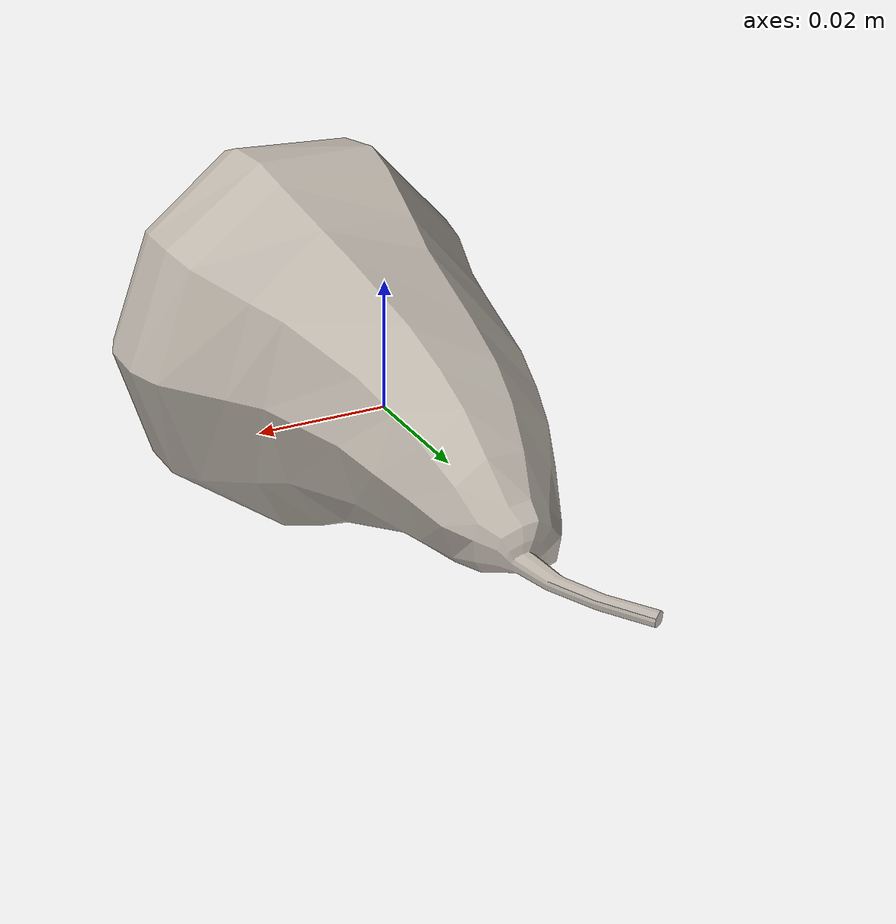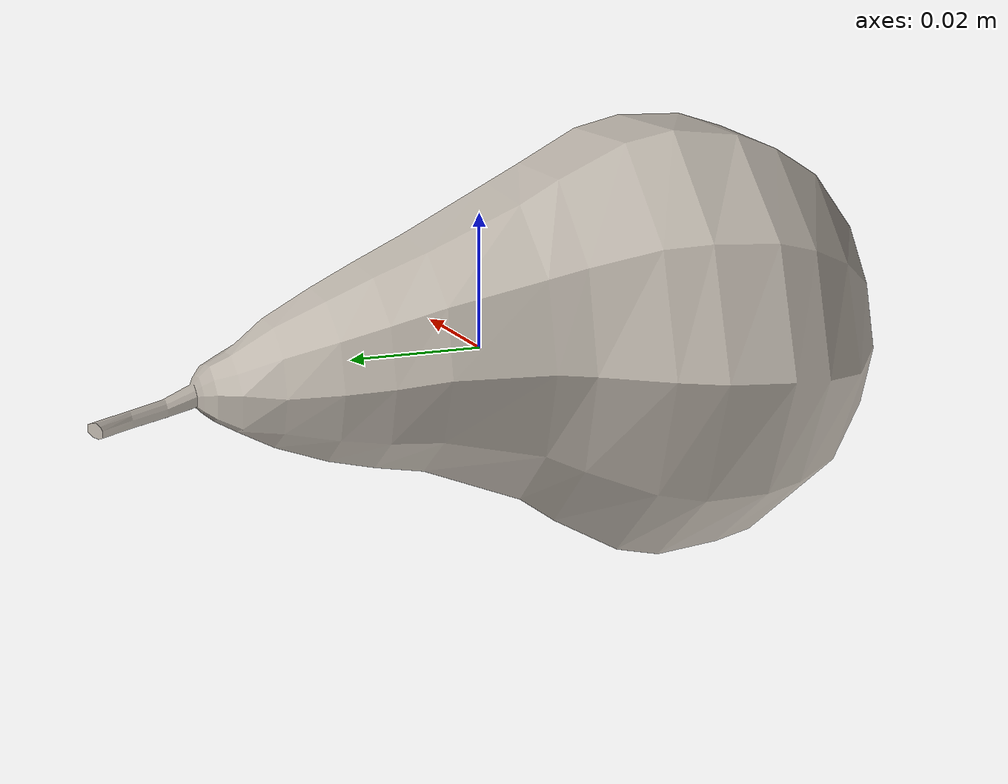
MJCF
<mujoco model="pear_13">
  <asset>
    <mesh file="visual/model_normalized_0.obj" name="pear_13_model_normalized_0_vis" scale="0.12 0.12 0.12" refquat="0.4999999999999999 0.4999999999999999 0.5 0.5" />
    <mesh file="collision/model_normalized_collision_22.obj" name="pear_13_model_normalized_collision_22._coll" scale="0.12 0.12 0.12" refquat="0.4999999999999999 0.4999999999999999 0.5 0.5" />
    <mesh file="collision/model_normalized_collision_23.obj" name="pear_13_model_normalized_collision_23._coll" scale="0.12 0.12 0.12" refquat="0.4999999999999999 0.4999999999999999 0.5 0.5" />
    <mesh file="collision/model_normalized_collision_21.obj" name="pear_13_model_normalized_collision_21._coll" scale="0.12 0.12 0.12" refquat="0.4999999999999999 0.4999999999999999 0.5 0.5" />
    <mesh file="collision/model_normalized_collision_20.obj" name="pear_13_model_normalized_collision_20._coll" scale="0.12 0.12 0.12" refquat="0.4999999999999999 0.4999999999999999 0.5 0.5" />
    <mesh file="collision/model_normalized_collision_24.obj" name="pear_13_model_normalized_collision_24._coll" scale="0.12 0.12 0.12" refquat="0.4999999999999999 0.4999999999999999 0.5 0.5" />
    <mesh file="collision/model_normalized_collision_30.obj" name="pear_13_model_normalized_collision_30._coll" scale="0.12 0.12 0.12" refquat="0.4999999999999999 0.4999999999999999 0.5 0.5" />
    <mesh file="collision/model_normalized_collision_18.obj" name="pear_13_model_normalized_collision_18._coll" scale="0.12 0.12 0.12" refquat="0.4999999999999999 0.4999999999999999 0.5 0.5" />
    <mesh file="collision/model_normalized_collision_19.obj" name="pear_13_model_normalized_collision_19._coll" scale="0.12 0.12 0.12" refquat="0.4999999999999999 0.4999999999999999 0.5 0.5" />
    <mesh file="collision/model_normalized_collision_31.obj" name="pear_13_model_normalized_collision_31._coll" scale="0.12 0.12 0.12" refquat="0.4999999999999999 0.4999999999999999 0.5 0.5" />
    <mesh file="collision/model_normalized_collision_25.obj" name="pear_13_model_normalized_collision_25._coll" scale="0.12 0.12 0.12" refquat="0.4999999999999999 0.4999999999999999 0.5 0.5" />
    <mesh file="collision/model_normalized_collision_27.obj" name="pear_13_model_normalized_collision_27._coll" scale="0.12 0.12 0.12" refquat="0.4999999999999999 0.4999999999999999 0.5 0.5" />
    <mesh file="collision/model_normalized_collision_26.obj" name="pear_13_model_normalized_collision_26._coll" scale="0.12 0.12 0.12" refquat="0.4999999999999999 0.4999999999999999 0.5 0.5" />
    <mesh file="collision/model_normalized_collision_9.obj" name="pear_13_model_normalized_collision_9._coll" scale="0.12 0.12 0.12" refquat="0.4999999999999999 0.4999999999999999 0.5 0.5" />
    <mesh file="collision/model_normalized_collision_8.obj" name="pear_13_model_normalized_collision_8._coll" scale="0.12 0.12 0.12" refquat="0.4999999999999999 0.4999999999999999 0.5 0.5" />
    <mesh file="collision/model_normalized_collision_6.obj" name="pear_13_model_normalized_collision_6._coll" scale="0.12 0.12 0.12" refquat="0.4999999999999999 0.4999999999999999 0.5 0.5" />
    <mesh file="collision/model_normalized_collision_7.obj" name="pear_13_model_normalized_collision_7._coll" scale="0.12 0.12 0.12" refquat="0.4999999999999999 0.4999999999999999 0.5 0.5" />
    <mesh file="collision/model_normalized_collision_5.obj" name="pear_13_model_normalized_collision_5._coll" scale="0.12 0.12 0.12" refquat="0.4999999999999999 0.4999999999999999 0.5 0.5" />
    <mesh file="collision/model_normalized_collision_4.obj" name="pear_13_model_normalized_collision_4._coll" scale="0.12 0.12 0.12" refquat="0.4999999999999999 0.4999999999999999 0.5 0.5" />
    <mesh file="collision/model_normalized_collision_0.obj" name="pear_13_model_normalized_collision_0._coll" scale="0.12 0.12 0.12" refquat="0.4999999999999999 0.4999999999999999 0.5 0.5" />
    <mesh file="collision/model_normalized_collision_1.obj" name="pear_13_model_normalized_collision_1._coll" scale="0.12 0.12 0.12" refquat="0.4999999999999999 0.4999999999999999 0.5 0.5" />
    <mesh file="collision/model_normalized_collision_3.obj" name="pear_13_model_normalized_collision_3._coll" scale="0.12 0.12 0.12" refquat="0.4999999999999999 0.4999999999999999 0.5 0.5" />
    <mesh file="collision/model_normalized_collision_2.obj" name="pear_13_model_normalized_collision_2._coll" scale="0.12 0.12 0.12" refquat="0.4999999999999999 0.4999999999999999 0.5 0.5" />
    <mesh file="collision/model_normalized_collision_17.obj" name="pear_13_model_normalized_collision_17._coll" scale="0.12 0.12 0.12" refquat="0.4999999999999999 0.4999999999999999 0.5 0.5" />
    <mesh file="collision/model_normalized_collision_16.obj" name="pear_13_model_normalized_collision_16._coll" scale="0.12 0.12 0.12" refquat="0.4999999999999999 0.4999999999999999 0.5 0.5" />
    <mesh file="collision/model_normalized_collision_28.obj" name="pear_13_model_normalized_collision_28._coll" scale="0.12 0.12 0.12" refquat="0.4999999999999999 0.4999999999999999 0.5 0.5" />
    <mesh file="collision/model_normalized_collision_14.obj" name="pear_13_model_normalized_collision_14._coll" scale="0.12 0.12 0.12" refquat="0.4999999999999999 0.4999999999999999 0.5 0.5" />
    <mesh file="collision/model_normalized_collision_15.obj" name="pear_13_model_normalized_collision_15._coll" scale="0.12 0.12 0.12" refquat="0.4999999999999999 0.4999999999999999 0.5 0.5" />
    <mesh file="collision/model_normalized_collision_29.obj" name="pear_13_model_normalized_collision_29._coll" scale="0.12 0.12 0.12" refquat="0.4999999999999999 0.4999999999999999 0.5 0.5" />
    <mesh file="collision/model_normalized_collision_11.obj" name="pear_13_model_normalized_collision_11._coll" scale="0.12 0.12 0.12" refquat="0.4999999999999999 0.4999999999999999 0.5 0.5" />
    <mesh file="collision/model_normalized_collision_10.obj" name="pear_13_model_normalized_collision_10._coll" scale="0.12 0.12 0.12" refquat="0.4999999999999999 0.4999999999999999 0.5 0.5" />
    <mesh file="collision/model_normalized_collision_12.obj" name="pear_13_model_normalized_collision_12._coll" scale="0.12 0.12 0.12" refquat="0.4999999999999999 0.4999999999999999 0.5 0.5" />
    <mesh file="collision/model_normalized_collision_13.obj" name="pear_13_model_normalized_collision_13._coll" scale="0.12 0.12 0.12" refquat="0.4999999999999999 0.4999999999999999 0.5 0.5" />
    <texture type="2d" name="pear_13_image0" file="visual/image0.png" />
    <material name="pear_13_M_Pear" texture="pear_13_image0" specular="0.5" shininess="0.25" />
  </asset>
  <worldbody>
    <body>
      <joint name="pear_13_object_joint" type="free" damping="1." /><body name="pear_13_object">
        <geom solimp="0.998 0.998 0.001" solref="0.001 1" density="300" friction="0.95 0.3 0.1" type="mesh" mesh="pear_13_model_normalized_0_vis" conaffinity="0" contype="0" group="1" material="pear_13_M_Pear" />
        <geom solimp="0.998 0.998 0.001" solref="0.001 1" density="300" friction="0.95 0.3 0.1" type="mesh" mesh="pear_13_model_normalized_collision_22._coll" group="0" rgba="0.8 0.8 0.8 0.0" />
        <geom solimp="0.998 0.998 0.001" solref="0.001 1" density="300" friction="0.95 0.3 0.1" type="mesh" mesh="pear_13_model_normalized_collision_23._coll" group="0" rgba="0.8 0.8 0.8 0.0" />
        <geom solimp="0.998 0.998 0.001" solref="0.001 1" density="300" friction="0.95 0.3 0.1" type="mesh" mesh="pear_13_model_normalized_collision_21._coll" group="0" rgba="0.8 0.8 0.8 0.0" />
        <geom solimp="0.998 0.998 0.001" solref="0.001 1" density="300" friction="0.95 0.3 0.1" type="mesh" mesh="pear_13_model_normalized_collision_20._coll" group="0" rgba="0.8 0.8 0.8 0.0" />
        <geom solimp="0.998 0.998 0.001" solref="0.001 1" density="300" friction="0.95 0.3 0.1" type="mesh" mesh="pear_13_model_normalized_collision_24._coll" group="0" rgba="0.8 0.8 0.8 0.0" />
        <geom solimp="0.998 0.998 0.001" solref="0.001 1" density="300" friction="0.95 0.3 0.1" type="mesh" mesh="pear_13_model_normalized_collision_30._coll" group="0" rgba="0.8 0.8 0.8 0.0" />
        <geom solimp="0.998 0.998 0.001" solref="0.001 1" density="300" friction="0.95 0.3 0.1" type="mesh" mesh="pear_13_model_normalized_collision_18._coll" group="0" rgba="0.8 0.8 0.8 0.0" />
        <geom solimp="0.998 0.998 0.001" solref="0.001 1" density="300" friction="0.95 0.3 0.1" type="mesh" mesh="pear_13_model_normalized_collision_19._coll" group="0" rgba="0.8 0.8 0.8 0.0" />
        <geom solimp="0.998 0.998 0.001" solref="0.001 1" density="300" friction="0.95 0.3 0.1" type="mesh" mesh="pear_13_model_normalized_collision_31._coll" group="0" rgba="0.8 0.8 0.8 0.0" />
        <geom solimp="0.998 0.998 0.001" solref="0.001 1" density="300" friction="0.95 0.3 0.1" type="mesh" mesh="pear_13_model_normalized_collision_25._coll" group="0" rgba="0.8 0.8 0.8 0.0" />
        <geom solimp="0.998 0.998 0.001" solref="0.001 1" density="300" friction="0.95 0.3 0.1" type="mesh" mesh="pear_13_model_normalized_collision_27._coll" group="0" rgba="0.8 0.8 0.8 0.0" />
        <geom solimp="0.998 0.998 0.001" solref="0.001 1" density="300" friction="0.95 0.3 0.1" type="mesh" mesh="pear_13_model_normalized_collision_26._coll" group="0" rgba="0.8 0.8 0.8 0.0" />
        <geom solimp="0.998 0.998 0.001" solref="0.001 1" density="300" friction="0.95 0.3 0.1" type="mesh" mesh="pear_13_model_normalized_collision_9._coll" group="0" rgba="0.8 0.8 0.8 0.0" />
        <geom solimp="0.998 0.998 0.001" solref="0.001 1" density="300" friction="0.95 0.3 0.1" type="mesh" mesh="pear_13_model_normalized_collision_8._coll" group="0" rgba="0.8 0.8 0.8 0.0" />
        <geom solimp="0.998 0.998 0.001" solref="0.001 1" density="300" friction="0.95 0.3 0.1" type="mesh" mesh="pear_13_model_normalized_collision_6._coll" group="0" rgba="0.8 0.8 0.8 0.0" />
        <geom solimp="0.998 0.998 0.001" solref="0.001 1" density="300" friction="0.95 0.3 0.1" type="mesh" mesh="pear_13_model_normalized_collision_7._coll" group="0" rgba="0.8 0.8 0.8 0.0" />
        <geom solimp="0.998 0.998 0.001" solref="0.001 1" density="300" friction="0.95 0.3 0.1" type="mesh" mesh="pear_13_model_normalized_collision_5._coll" group="0" rgba="0.8 0.8 0.8 0.0" />
        <geom solimp="0.998 0.998 0.001" solref="0.001 1" density="300" friction="0.95 0.3 0.1" type="mesh" mesh="pear_13_model_normalized_collision_4._coll" group="0" rgba="0.8 0.8 0.8 0.0" />
        <geom solimp="0.998 0.998 0.001" solref="0.001 1" density="300" friction="0.95 0.3 0.1" type="mesh" mesh="pear_13_model_normalized_collision_0._coll" group="0" rgba="0.8 0.8 0.8 0.0" />
        <geom solimp="0.998 0.998 0.001" solref="0.001 1" density="300" friction="0.95 0.3 0.1" type="mesh" mesh="pear_13_model_normalized_collision_1._coll" group="0" rgba="0.8 0.8 0.8 0.0" />
        <geom solimp="0.998 0.998 0.001" solref="0.001 1" density="300" friction="0.95 0.3 0.1" type="mesh" mesh="pear_13_model_normalized_collision_3._coll" group="0" rgba="0.8 0.8 0.8 0.0" />
        <geom solimp="0.998 0.998 0.001" solref="0.001 1" density="300" friction="0.95 0.3 0.1" type="mesh" mesh="pear_13_model_normalized_collision_2._coll" group="0" rgba="0.8 0.8 0.8 0.0" />
        <geom solimp="0.998 0.998 0.001" solref="0.001 1" density="300" friction="0.95 0.3 0.1" type="mesh" mesh="pear_13_model_normalized_collision_17._coll" group="0" rgba="0.8 0.8 0.8 0.0" />
        <geom solimp="0.998 0.998 0.001" solref="0.001 1" density="300" friction="0.95 0.3 0.1" type="mesh" mesh="pear_13_model_normalized_collision_16._coll" group="0" rgba="0.8 0.8 0.8 0.0" />
        <geom solimp="0.998 0.998 0.001" solref="0.001 1" density="300" friction="0.95 0.3 0.1" type="mesh" mesh="pear_13_model_normalized_collision_28._coll" group="0" rgba="0.8 0.8 0.8 0.0" />
        <geom solimp="0.998 0.998 0.001" solref="0.001 1" density="300" friction="0.95 0.3 0.1" type="mesh" mesh="pear_13_model_normalized_collision_14._coll" group="0" rgba="0.8 0.8 0.8 0.0" />
        <geom solimp="0.998 0.998 0.001" solref="0.001 1" density="300" friction="0.95 0.3 0.1" type="mesh" mesh="pear_13_model_normalized_collision_15._coll" group="0" rgba="0.8 0.8 0.8 0.0" />
        <geom solimp="0.998 0.998 0.001" solref="0.001 1" density="300" friction="0.95 0.3 0.1" type="mesh" mesh="pear_13_model_normalized_collision_29._coll" group="0" rgba="0.8 0.8 0.8 0.0" />
        <geom solimp="0.998 0.998 0.001" solref="0.001 1" density="300" friction="0.95 0.3 0.1" type="mesh" mesh="pear_13_model_normalized_collision_11._coll" group="0" rgba="0.8 0.8 0.8 0.0" />
        <geom solimp="0.998 0.998 0.001" solref="0.001 1" density="300" friction="0.95 0.3 0.1" type="mesh" mesh="pear_13_model_normalized_collision_10._coll" group="0" rgba="0.8 0.8 0.8 0.0" />
        <geom solimp="0.998 0.998 0.001" solref="0.001 1" density="300" friction="0.95 0.3 0.1" type="mesh" mesh="pear_13_model_normalized_collision_12._coll" group="0" rgba="0.8 0.8 0.8 0.0" />
        <geom solimp="0.998 0.998 0.001" solref="0.001 1" density="300" friction="0.95 0.3 0.1" type="mesh" mesh="pear_13_model_normalized_collision_13._coll" group="0" rgba="0.8 0.8 0.8 0.0" />
      </body>

    </body>
  </worldbody>
</mujoco>
